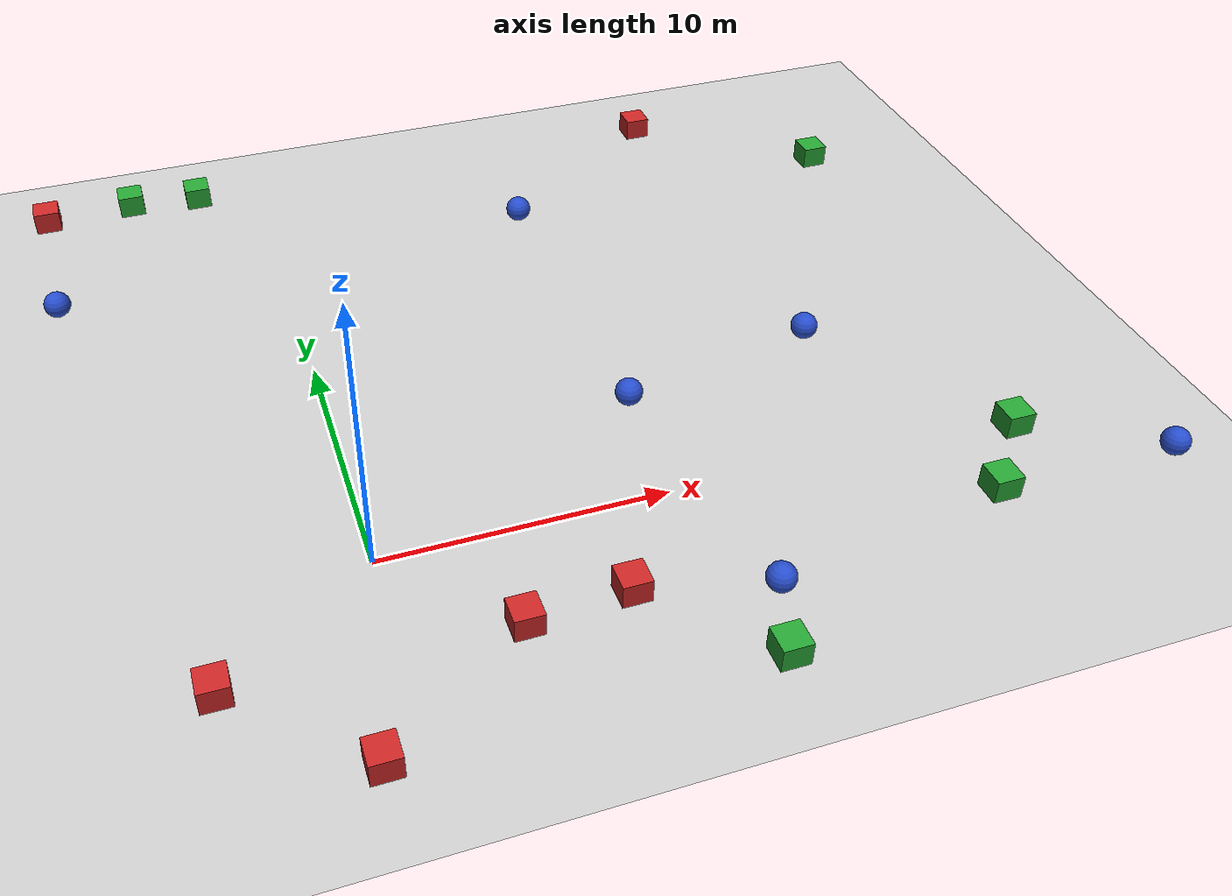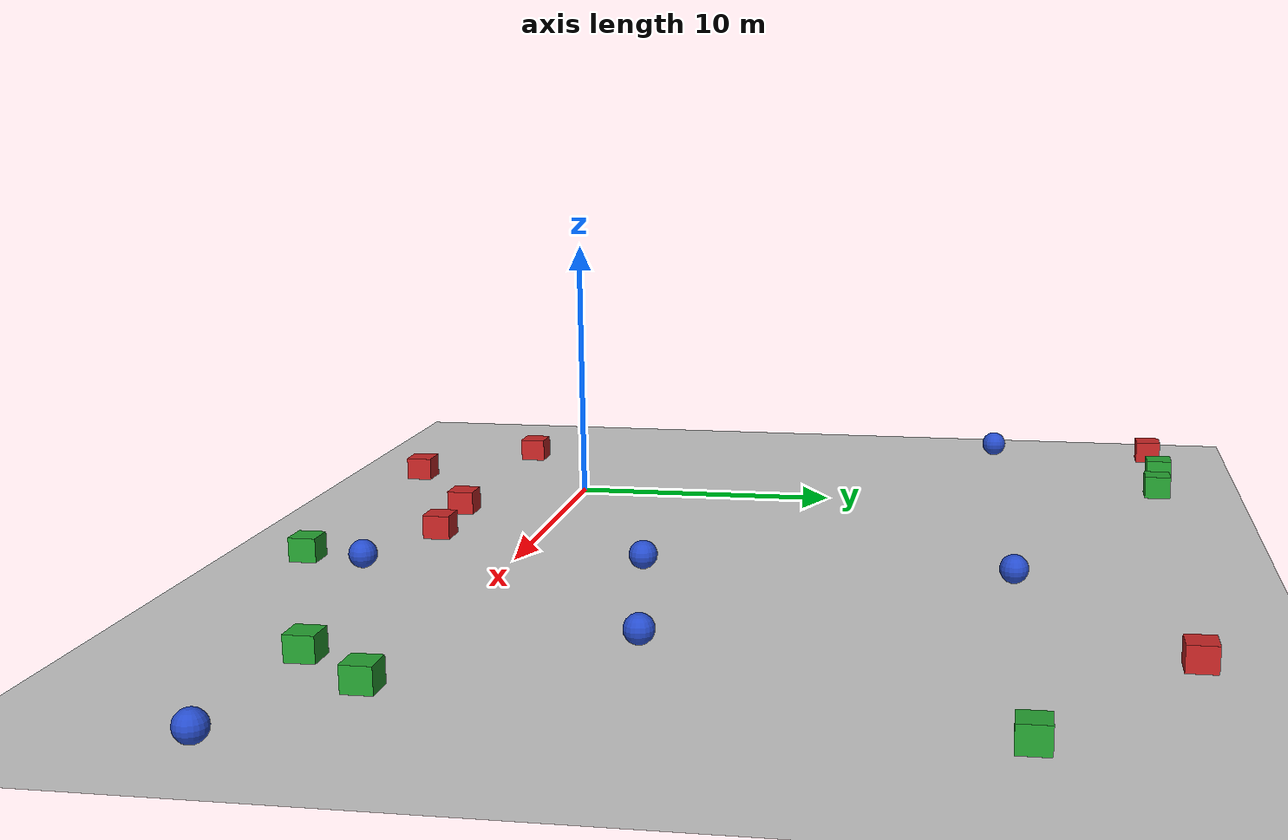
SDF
<sdf version="1.6">
 <world name="default">
  <light name="sun" type="directional">
   <pose>0 0 10 0 -0 0</pose>
   <diffuse>0.8 0.8 0.8 1</diffuse>
   <specular>0.1 0.1 0.1 1</specular>
   <attenuation>
    <range>1000</range>
    <constant>0.9</constant>
    <linear>0.01</linear>
    <quadratic>0.001</quadratic>
   </attenuation>
   <direction>-0.5 0.5 -1</direction>
  </light>
  <model name="ground_plane">
   <static>1</static>
   <link name="link">
    <collision name="collision">
     <geometry><plane><normal>0 0 1</normal><size>100 100</size></plane></geometry>
     <surface><friction><ode><mu>100</mu><mu2>50</mu2></ode></friction></surface>
    </collision>
    <visual name="visual">
     <cast_shadows>0</cast_shadows>
     <geometry><plane><normal>0 0 1</normal><size>100 100</size></plane></geometry>
     <material>
      <script><uri>file://media/materials/scripts/gazebo.material</uri><name>Gazebo/Grey</name></script>
     </material>
    </visual>
   </link>
  </model>
  <model name="unit_box_red_6">
   <pose>-5.38098116936 -3.6404409286 0.329741 0 -0 0</pose>
   <link name="link">
    <inertial>
     <mass>1</mass>
     <inertia>
      <ixx>0.166667</ixx>
      <ixy>0</ixy>
      <ixz>0</ixz>
      <iyy>0.166667</iyy>
      <iyz>0</iyz>
      <izz>0.166667</izz>
     </inertia>
    </inertial>
    <collision name="collision"><geometry><box><size>1 1 0.999999</size></box></geometry></collision>
    <visual name="visual">
     <geometry><box><size>1 1 0.999999</size></box></geometry>
     <material>
      <script><name>Gazebo/Red</name><uri>file://media/materials/scripts/gazebo.material</uri></script>
     </material>
    </visual>
   </link>
  </model>
  <model name="unit_box_red_5">
   <pose>-8.78491349038 23.220582237 0.329741 0 -0 0</pose>
   <link name="link">
    <inertial>
     <mass>1</mass>
     <inertia>
      <ixx>0.166667</ixx>
      <ixy>0</ixy>
      <ixz>0</ixz>
      <iyy>0.166667</iyy>
      <iyz>0</iyz>
      <izz>0.166667</izz>
     </inertia>
    </inertial>
    <collision name="collision"><geometry><box><size>1 1 0.999999</size></box></geometry></collision>
    <visual name="visual">
     <geometry><box><size>1 1 0.999999</size></box></geometry>
     <material>
      <script><name>Gazebo/Red</name><uri>file://media/materials/scripts/gazebo.material</uri></script>
     </material>
    </visual>
   </link>
  </model>
  <model name="unit_box_red_4">
   <pose>17.4922688207 22.9700589026 0.329741 0 -0 0</pose>
   <link name="link">
    <inertial>
     <mass>1</mass>
     <inertia>
      <ixx>0.166667</ixx>
      <ixy>0</ixy>
      <ixz>0</ixz>
      <iyy>0.166667</iyy>
      <iyz>0</iyz>
      <izz>0.166667</izz>
     </inertia>
    </inertial>
    <collision name="collision"><geometry><box><size>1 1 0.999999</size></box></geometry></collision>
    <visual name="visual">
     <geometry><box><size>1 1 0.999999</size></box></geometry>
     <material>
      <script><name>Gazebo/Red</name><uri>file://media/materials/scripts/gazebo.material</uri></script>
     </material>
    </visual>
   </link>
  </model>
  <model name="unit_box_red_3">
   <pose>-1.34031498726 -7.41467258148 0.329741 0 -0 0</pose>
   <link name="link">
    <inertial>
     <mass>1</mass>
     <inertia>
      <ixx>0.166667</ixx>
      <ixy>0</ixy>
      <ixz>0</ixz>
      <iyy>0.166667</iyy>
      <iyz>0</iyz>
      <izz>0.166667</izz>
     </inertia>
    </inertial>
    <collision name="collision"><geometry><box><size>1 1 0.999999</size></box></geometry></collision>
    <visual name="visual">
     <geometry><box><size>1 1 0.999999</size></box></geometry>
     <material>
      <script><name>Gazebo/Red</name><uri>file://media/materials/scripts/gazebo.material</uri></script>
     </material>
    </visual>
   </link>
  </model>
  <model name="unit_box_red_2">
   <pose>3.76376930959 -3.91123825644 0.329741 0 -0 0</pose>
   <link name="link">
    <inertial>
     <mass>1</mass>
     <inertia>
      <ixx>0.166667</ixx>
      <ixy>0</ixy>
      <ixz>0</ixz>
      <iyy>0.166667</iyy>
      <iyz>0</iyz>
      <izz>0.166667</izz>
     </inertia>
    </inertial>
    <collision name="collision"><geometry><box><size>1 1 0.999999</size></box></geometry></collision>
    <visual name="visual">
     <geometry><box><size>1 1 0.999999</size></box></geometry>
     <material>
      <script><name>Gazebo/Red</name><uri>file://media/materials/scripts/gazebo.material</uri></script>
     </material>
    </visual>
   </link>
  </model>
  <model name="unit_box_red_1">
   <pose>7.24939305983 -3.68142992366 0.329741 0 -0 0</pose>
   <link name="link">
    <inertial>
     <mass>1</mass>
     <inertia>
      <ixx>0.166667</ixx>
      <ixy>0</ixy>
      <ixz>0</ixz>
      <iyy>0.166667</iyy>
      <iyz>0</iyz>
      <izz>0.166667</izz>
     </inertia>
    </inertial>
    <collision name="collision"><geometry><box><size>1 1 0.999999</size></box></geometry></collision>
    <visual name="visual">
     <geometry><box><size>1 1 0.999999</size></box></geometry>
     <material>
      <script><name>Gazebo/Red</name><uri>file://media/materials/scripts/gazebo.material</uri></script>
     </material>
    </visual>
   </link>
  </model>
  <model name="unit_box_green_6">
   <pose>24.1319729692 18.1040768338 0.329741 0 -0 0</pose>
   <link name="link">
    <inertial>
     <mass>1</mass>
     <inertia>
      <ixx>0.166667</ixx>
      <ixy>0</ixy>
      <ixz>0</ixz>
      <iyy>0.166667</iyy>
      <iyz>0</iyz>
      <izz>0.166667</izz>
     </inertia>
    </inertial>
    <collision name="collision"><geometry><box><size>1 1 0.999999</size></box></geometry></collision>
    <visual name="visual">
     <geometry><box><size>1 1 0.999999</size></box></geometry>
     <material>
      <script><name>Gazebo/Green</name><uri>file://media/materials/scripts/gazebo.material</uri></script>
     </material>
    </visual>
   </link>
  </model>
  <model name="unit_box_green_5">
   <pose>22.5766987323 -0.654380237801 0.329741 0 -0 0</pose>
   <link name="link">
    <inertial>
     <mass>1</mass>
     <inertia>
      <ixx>0.166667</ixx>
      <ixy>0</ixy>
      <ixz>0</ixz>
      <iyy>0.166667</iyy>
      <iyz>0</iyz>
      <izz>0.166667</izz>
     </inertia>
    </inertial>
    <collision name="collision"><geometry><box><size>1 1 0.999999</size></box></geometry></collision>
    <visual name="visual">
     <geometry><box><size>1 1 0.999999</size></box></geometry>
     <material>
      <script><name>Gazebo/Green</name><uri>file://media/materials/scripts/gazebo.material</uri></script>
     </material>
    </visual>
   </link>
  </model>
  <model name="unit_box_green_4">
   <pose>-5.32932087841 23.4377073374 0.329741 0 -0 0</pose>
   <link name="link">
    <inertial>
     <mass>1</mass>
     <inertia>
      <ixx>0.166667</ixx>
      <ixy>0</ixy>
      <ixz>0</ixz>
      <iyy>0.166667</iyy>
      <iyz>0</iyz>
      <izz>0.166667</izz>
     </inertia>
    </inertial>
    <collision name="collision"><geometry><box><size>1 1 0.999999</size></box></geometry></collision>
    <visual name="visual">
     <geometry><box><size>1 1 0.999999</size></box></geometry>
     <material>
      <script><name>Gazebo/Green</name><uri>file://media/materials/scripts/gazebo.material</uri></script>
     </material>
    </visual>
   </link>
  </model>
  <model name="unit_box_green_3">
   <pose>20.4122550968 -3.27978909021 0.329741 0 -0 0</pose>
   <link name="link">
    <inertial>
     <mass>1</mass>
     <inertia>
      <ixx>0.166667</ixx>
      <ixy>0</ixy>
      <ixz>0</ixz>
      <iyy>0.166667</iyy>
      <iyz>0</iyz>
      <izz>0.166667</izz>
     </inertia>
    </inertial>
    <collision name="collision"><geometry><box><size>1 1 0.999999</size></box></geometry></collision>
    <visual name="visual">
     <geometry><box><size>1 1 0.999999</size></box></geometry>
     <material>
      <script><name>Gazebo/Green</name><uri>file://media/materials/scripts/gazebo.material</uri></script>
     </material>
    </visual>
   </link>
  </model>
  <model name="unit_box_green_2">
   <pose>-2.56742191177 23.1868019694 0.329741 0 -0 0</pose>
   <link name="link">
    <inertial>
     <mass>1</mass>
     <inertia>
      <ixx>0.166667</ixx>
      <ixy>0</ixy>
      <ixz>0</ixz>
      <iyy>0.166667</iyy>
      <iyz>0</iyz>
      <izz>0.166667</izz>
     </inertia>
    </inertial>
    <collision name="collision"><geometry><box><size>1 1 0.999999</size></box></geometry></collision>
    <visual name="visual">
     <geometry><box><size>1 1 0.999999</size></box></geometry>
     <material>
      <script><name>Gazebo/Green</name><uri>file://media/materials/scripts/gazebo.material</uri></script>
     </material>
    </visual>
   </link>
  </model>
  <model name="unit_box_green_1">
   <pose>10.7438456976 -7.37576553081 0.329741 0 -0 0</pose>
   <link name="link">
    <inertial>
     <mass>1</mass>
     <inertia>
      <ixx>0.166667</ixx>
      <ixy>0</ixy>
      <ixz>0</ixz>
      <iyy>0.166667</iyy>
      <iyz>0</iyz>
      <izz>0.166667</izz>
     </inertia>
    </inertial>
    <collision name="collision"><geometry><box><size>1 1 0.999999</size></box></geometry></collision>
    <visual name="visual">
     <geometry><box><size>1 1 0.999999</size></box></geometry>
     <material>
      <script><name>Gazebo/Green</name><uri>file://media/materials/scripts/gazebo.material</uri></script>
     </material>
    </visual>
   </link>
  </model>
  <model name="unit_sphere_blue_6">
   <pose>10.3303989352 4.73479367131 0.5 0 -0 0</pose>
   <link name="link">
    <inertial>
     <mass>1</mass>
     <inertia><ixx>0.1</ixx><ixy>0</ixy><ixz>0</ixz><iyy>0.1</iyy><iyz>0</iyz><izz>0.1</izz></inertia>
    </inertial>
    <collision name="collision"><geometry><sphere><radius>0.5</radius></sphere></geometry></collision>
    <visual name="visual">
     <geometry><sphere><radius>0.5</radius></sphere></geometry>
     <material>
      <script><name>Gazebo/Blue</name><uri>file://media/materials/scripts/gazebo.material</uri></script>
     </material>
    </visual>
   </link>
  </model>
  <model name="unit_sphere_blue_5">
   <pose>27.041001098 -3.53492525971 0.5 0 -0 0</pose>
   <link name="link">
    <inertial>
     <mass>1</mass>
     <inertia><ixx>0.1</ixx><ixy>0</ixy><ixz>0</ixz><iyy>0.1</iyy><iyz>0</iyz><izz>0.1</izz></inertia>
    </inertial>
    <collision name="collision"><geometry><sphere><radius>0.5</radius></sphere></geometry></collision>
    <visual name="visual">
     <geometry><sphere><radius>0.5</radius></sphere></geometry>
     <material>
      <script><name>Gazebo/Blue</name><uri>file://media/materials/scripts/gazebo.material</uri></script>
     </material>
    </visual>
   </link>
  </model>
  <model name="unit_sphere_blue_4">
   <pose>10.1792244609 17.5135049929 0.5 0 -0 0</pose>
   <link name="link">
    <inertial>
     <mass>1</mass>
     <inertia><ixx>0.1</ixx><ixy>0</ixy><ixz>0</ixz><iyy>0.1</iyy><iyz>0</iyz><izz>0.1</izz></inertia>
    </inertial>
    <collision name="collision"><geometry><sphere><radius>0.5</radius></sphere></geometry></collision>
    <visual name="visual">
     <geometry><sphere><radius>0.5</radius></sphere></geometry>
     <material>
      <script><name>Gazebo/Blue</name><uri>file://media/materials/scripts/gazebo.material</uri></script>
     </material>
    </visual>
   </link>
  </model>
  <model name="unit_sphere_blue_3">
   <pose>-8.67098953811 16.5093209494 0.5 0 -0 0</pose>
   <link name="link">
    <inertial>
     <mass>1</mass>
     <inertia><ixx>0.1</ixx><ixy>0</ixy><ixz>0</ixz><iyy>0.1</iyy><iyz>0</iyz><izz>0.1</izz></inertia>
    </inertial>
    <collision name="collision"><geometry><sphere><radius>0.5</radius></sphere></geometry></collision>
    <visual name="visual">
     <geometry><sphere><radius>0.5</radius></sphere></geometry>
     <material>
      <script><name>Gazebo/Blue</name><uri>file://media/materials/scripts/gazebo.material</uri></script>
     </material>
    </visual>
   </link>
  </model>
  <model name="unit_sphere_blue_2">
   <pose>11.6187956847 -4.95484079363 0.5 0 -0 0</pose>
   <link name="link">
    <inertial>
     <mass>1</mass>
     <inertia><ixx>0.1</ixx><ixy>0</ixy><ixz>0</ixz><iyy>0.1</iyy><iyz>0</iyz><izz>0.1</izz></inertia>
    </inertial>
    <collision name="collision"><geometry><sphere><radius>0.5</radius></sphere></geometry></collision>
    <visual name="visual">
     <geometry><sphere><radius>0.5</radius></sphere></geometry>
     <material>
      <script><name>Gazebo/Blue</name><uri>file://media/materials/scripts/gazebo.material</uri></script>
     </material>
    </visual>
   </link>
  </model>
  <model name="unit_sphere_blue_1">
   <pose>17.9691528412 6.3044309649 0.5 0 -0 0</pose>
   <link name="link">
    <inertial>
     <mass>1</mass>
     <inertia><ixx>0.1</ixx><ixy>0</ixy><ixz>0</ixz><iyy>0.1</iyy><iyz>0</iyz><izz>0.1</izz></inertia>
    </inertial>
    <collision name="collision"><geometry><sphere><radius>0.5</radius></sphere></geometry></collision>
    <visual name="visual">
     <geometry><sphere><radius>0.5</radius></sphere></geometry>
     <material>
      <script><name>Gazebo/Blue</name><uri>file://media/materials/scripts/gazebo.material</uri></script>
     </material>
    </visual>
   </link>
  </model>
  <gravity>0 0 -9.8</gravity>
  <magnetic_field>6e-06 2.3e-05 -4.2e-05</magnetic_field>
  <atmosphere type="adiabatic"/>
  <physics default="0" name="default_physics" type="ode">
   <max_step_size>0.001</max_step_size>
   <real_time_factor>1</real_time_factor>
   <real_time_update_rate>1000</real_time_update_rate>
  </physics>
  <scene><ambient>0.4 0.4 0.4 1</ambient><background>0.7 0.7 0.7 1</background><shadows>1</shadows></scene>
  <spherical_coordinates>
   <surface_model>EARTH_WGS84</surface_model>
   <latitude_deg>0</latitude_deg>
   <longitude_deg>0</longitude_deg>
   <elevation>0</elevation>
   <heading_deg>0</heading_deg>
  </spherical_coordinates>
 </world>
</sdf>
